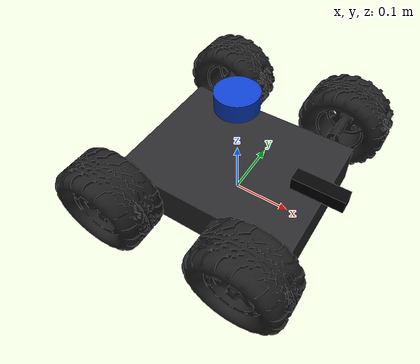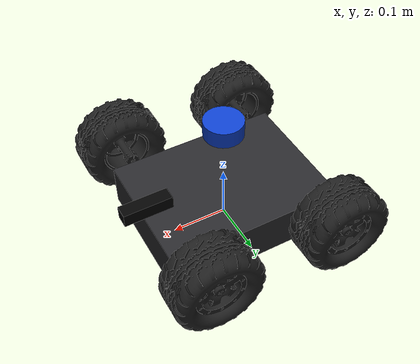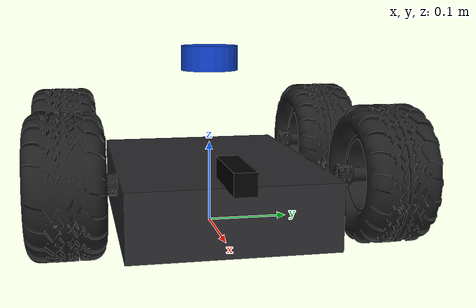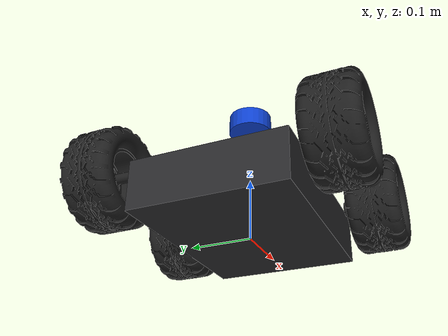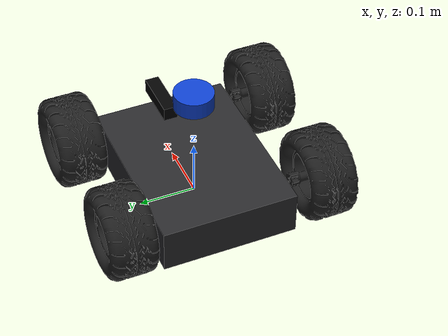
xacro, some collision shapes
<?xml version="1.0"?>
<robot xmlns:xacro="http://ros.org/wiki/xacro" name="rugged_rover">
  <xacro:arg name="command_qos" default="best_effort"/>
  <xacro:arg name="require_motor_enable" default="true"/>

  <xacro:arg name="lidar_model" default="rplidar"/>
  <!-- Ouster mount defaults are placeholders at the existing lidar position. -->
  <xacro:arg name="ouster_x" default="0"/>
  <xacro:arg name="ouster_y" default="0"/>
  <xacro:arg name="ouster_z" default="0.1905"/>
  <xacro:arg name="ouster_roll" default="0"/>
  <xacro:arg name="ouster_pitch" default="0"/>
  <xacro:arg name="ouster_yaw" default="0"/>

  <!-- Dimensions are in meters. ROS convention: X forward, Y left, Z up. -->
  <xacro:property name="chassis_length" value="0.320"/>
  <xacro:property name="chassis_width" value="0.241"/>
  <xacro:property name="chassis_height" value="0.0785"/>

  <xacro:property name="wheel_radius" value="0.079"/>
  <xacro:property name="wheel_width" value="0.060"/>
  <xacro:property name="wheel_x_offset" value="0.120"/>
  <xacro:property name="wheel_y_offset" value="0.205"/>
  <xacro:property name="wheel_z_offset" value="0.079"/>
  <xacro:property name="chassis_bottom_z_offset" value="${wheel_z_offset - chassis_height}"/>

  <xacro:property name="chassis_mesh" value="package://rugged_rover_robot_description/meshes/A4WD3-Chassis-Solid.stl"/>
  <xacro:property name="wheel_mesh" value="package://rugged_rover_robot_description/meshes/A4WD3-Wheel.stl"/>

  <material name="Black">
    <color rgba="0.02 0.02 0.02 1"/>
  </material>

  <material name="Grey">
    <color rgba="0.5 0.5 0.5 1"/>
  </material>

  <material name="CameraBlack">
    <color rgba="0.01 0.01 0.01 1"/>
  </material>

  <material name="LidarBlue">
    <color rgba="0.05 0.25 0.8 1"/>
  </material>

  <material name="Charcoal">
  <color rgba="0.12 0.12 0.12 1"/>
  </material>

  <material name="Graphite">
  <color rgba="0.16 0.16 0.17 1"/>
  </material>

  <!-- Navigation/control reference frame. Keep this clean and centered. -->
  <link name="base_link"/>

  <link name="chassis_link">
    <visual>
      <!-- Adjust rpy/scale here if the exported STL appears rotated or wrong-sized in RViz. -->
      <origin xyz="0 0 ${chassis_height / 2.0}" rpy="0 0 0"/>
      <geometry>
        <mesh filename="${chassis_mesh}" scale="0.001 0.001 0.001"/>
      </geometry>
      <material name="Graphite"/>
    </visual>

    <collision>
      <origin xyz="0 0 ${chassis_height / 2.0}" rpy="0 0 0"/>
      <geometry>
        <box size="${chassis_length} ${chassis_width} ${chassis_height}"/>
      </geometry>
    </collision>

    <inertial>
      <mass value="12.0"/>
      <origin xyz="0 0 0" rpy="0 0 0"/>
      <inertia
        ixx="0.08" ixy="0.0" ixz="0.0"
        iyy="0.12" iyz="0.0"
        izz="0.14"/>
    </inertial>
  </link>

  <joint name="base_to_chassis" type="fixed">
    <parent link="base_link"/>
    <child link="chassis_link"/>
    <origin xyz="0 0 ${chassis_bottom_z_offset}" rpy="0 0 0"/>
  </joint>

  <xacro:macro name="wheel" params="link_name joint_name x y visual_rpy">
    <link name="${link_name}">
      <visual>
        <origin xyz="0 0 0" rpy="${visual_rpy}"/>
        <geometry>
          <mesh filename="${wheel_mesh}" scale="0.001 0.001 0.001"/>
        </geometry>
        <material name="Charcoal"/>
      </visual>

      <collision>
        <origin xyz="0 0 0" rpy="1.57079632679 0 0"/>
        <geometry>
          <cylinder length="${wheel_width}" radius="${wheel_radius}"/>
        </geometry>
      </collision>

      <inertial>
        <mass value="2.0"/>
        <origin xyz="0 0 0" rpy="0 0 0"/>
        <inertia
          ixx="0.003" ixy="0.0" ixz="0.0"
          iyy="0.003" iyz="0.0"
          izz="0.003"/>
      </inertial>
    </link>

    <joint name="${joint_name}" type="continuous">
      <parent link="base_link"/>
      <child link="${link_name}"/>
      <origin xyz="${x} ${y} ${wheel_z_offset}" rpy="0 0 0"/>
      <axis xyz="0 1 0"/>
    </joint>
  </xacro:macro>

  <xacro:wheel
    link_name="front_left_wheel_link"
    joint_name="front_left_joint"
    x="${wheel_x_offset}"
    y="${wheel_y_offset}"
    visual_rpy="0 0 3.14159265359"/>

  <xacro:wheel
    link_name="front_right_wheel_link"
    joint_name="front_right_joint"
    x="${wheel_x_offset}"
    y="${-wheel_y_offset}"
    visual_rpy="0 0 0"/>

  <xacro:wheel
    link_name="rear_left_wheel_link"
    joint_name="rear_left_joint"
    x="${-wheel_x_offset}"
    y="${wheel_y_offset}"
    visual_rpy="0 0 3.14159265359"/>

  <xacro:wheel
    link_name="rear_right_wheel_link"
    joint_name="rear_right_joint"
    x="${-wheel_x_offset}"
    y="${-wheel_y_offset}"
    visual_rpy="0 0 0"/>

  <link name="camera_link">
    <visual>
      <origin xyz="0 0 0" rpy="0 0 0"/>
      <geometry>
        <box size="0.090 0.025 0.025"/>
      </geometry>
      <material name="CameraBlack"/>
    </visual>
  </link>

<joint name="base_to_camera" type="fixed">
  <parent link="base_link"/>
  <child link="camera_link"/>
  <origin xyz="0.150 0 ${chassis_bottom_z_offset + 0.090}" rpy="0 0 0"/>
</joint>

  <xacro:if value="${'$(arg lidar_model)' == 'rplidar'}">
  <link name="laser">
    <visual>
      <origin xyz="0 0 0.015" rpy="0 0 0"/>
      <geometry>
        <cylinder length="0.030" radius="0.035"/>
      </geometry>
      <material name="LidarBlue"/>
    </visual>
  </link>

  <joint name="base_to_laser" type="fixed">
    <parent link="base_link"/>
    <child link="laser"/>
    <origin xyz="0 0 ${chassis_bottom_z_offset + 0.190}" rpy="0 0 3.14159265359"/>
  </joint>

  </xacro:if>
  <xacro:if value="${'$(arg lidar_model)' == 'ouster'}">
    <link name="os1_lidar"/>
    <joint name="base_to_os1_lidar" type="fixed">
      <parent link="base_link"/>
      <child link="os1_lidar"/>
      <origin xyz="$(arg ouster_x) $(arg ouster_y) $(arg ouster_z)"
              rpy="$(arg ouster_roll) $(arg ouster_pitch) $(arg ouster_yaw)"/>
    </joint>
  </xacro:if>

  <link name="imu_link"/>

  <joint name="base_to_imu" type="fixed">
    <parent link="base_link"/>
    <child link="imu_link"/>
    <origin xyz="0.015 0.070 0.010" rpy="3.14159265359 0 -1.57079632679"/>
  </joint>

  <ros2_control name="RuggedRoverControl" type="system">
    <hardware>
      <plugin>rugged_rover_hardware_interfaces/sabertooth/SabertoothSystemInterface</plugin>
      <param name="command_qos">$(arg command_qos)</param>
      <param name="require_motor_enable">$(arg require_motor_enable)</param>
    </hardware>

    <joint name="front_left_joint">
      <command_interface name="velocity"/>
      <state_interface name="position"/>
      <state_interface name="velocity"/>
    </joint>

    <joint name="front_right_joint">
      <command_interface name="velocity"/>
      <state_interface name="position"/>
      <state_interface name="velocity"/>
    </joint>

    <joint name="rear_left_joint">
      <command_interface name="velocity"/>
      <state_interface name="position"/>
      <state_interface name="velocity"/>
    </joint>

    <joint name="rear_right_joint">
      <command_interface name="velocity"/>
      <state_interface name="position"/>
      <state_interface name="velocity"/>
    </joint>
  </ros2_control>

</robot>
